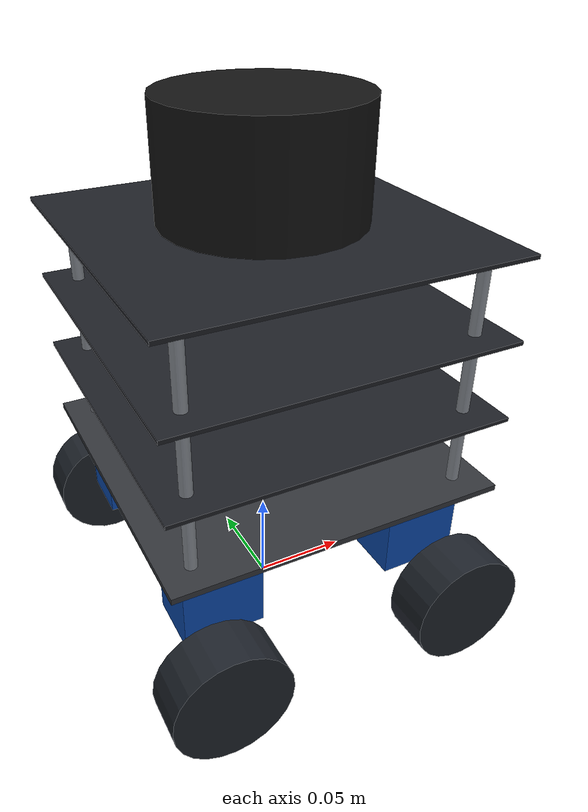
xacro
<?xml version="1.0"?>
<robot name="gatibot_v2"
       xmlns:xacro="http://www.ros.org/wiki/xacro">

  <!-- Dimensions in metres -->
  <xacro:property name="L" value="0.170"/>
  <xacro:property name="W" value="0.170"/>
  <xacro:property name="T0" value="0.003"/>
  <xacro:property name="T" value="0.002"/>
  <xacro:property name="GAP" value="0.040"/>

  <xacro:property name="R" value="0.030"/>
  <xacro:property name="WW" value="0.025"/>
  <xacro:property name="WX" value="0.065"/>
  <xacro:property name="WY" value="0.090"/>

  <!-- Plate centre heights above the ground -->
  <xacro:property name="Z0" value="0.090"/>
  <xacro:property name="Z1" value="${Z0 + GAP}"/>
  <xacro:property name="Z2" value="${Z1 + GAP}"/>
  <xacro:property name="Z3" value="${Z2 + GAP}"/>

  <!-- Main reference frame -->
  <link name="base_link">
    <visual>
      <origin xyz="0 0 ${Z0}"/>
      <geometry>
        <box size="${L} ${W} ${T0}"/>
      </geometry>
      <material name="bottom_plate">
        <color rgba="0.20 0.21 0.23 1"/>
      </material>
    </visual>
    <collision>
      <origin xyz="0 0 ${Z0}"/>
      <geometry>
        <box size="${L} ${W} ${T0}"/>
      </geometry>
    </collision>
    <inertial>
      <origin xyz="0 0 ${Z0}"/>
      <mass value="1.0"/>
      <inertia ixx="0.005" ixy="0" ixz="0"
               iyy="0.005" iyz="0" izz="0.005"/>
    </inertial>
  </link>

  <!-- Three additional chassis plates -->
  <xacro:macro name="plate" params="name z">
    <link name="${name}">
      <visual>
        <geometry>
          <box size="${L} ${W} ${T}"/>
        </geometry>
        <material name="plate_black">
          <color rgba="0.12 0.13 0.15 1"/>
        </material>
      </visual>
      <collision>
        <geometry>
          <box size="${L} ${W} ${T}"/>
        </geometry>
      </collision>
      <inertial>
        <mass value="0.15"/>
        <inertia ixx="0.0001" ixy="0" ixz="0"
                 iyy="0.0001" iyz="0" izz="0.0001"/>
      </inertial>
    </link>

    <joint name="${name}_joint" type="fixed">
      <parent link="base_link"/>
      <child link="${name}"/>
      <origin xyz="0 0 ${z}"/>
    </joint>
  </xacro:macro>

  <xacro:plate name="middle_plate_1" z="${Z1}"/>
  <xacro:plate name="middle_plate_2" z="${Z2}"/>
  <xacro:plate name="top_plate" z="${Z3}"/>

  <!-- Spacers for every gap between plates -->
  <xacro:macro name="spacer" params="name x y z">
    <link name="${name}">
      <visual>
        <geometry>
          <cylinder radius="0.003" length="${GAP}"/>
        </geometry>
        <material name="spacer_metal">
          <color rgba="0.55 0.57 0.60 1"/>
        </material>
      </visual>
      <collision>
        <geometry>
          <cylinder radius="0.003" length="${GAP}"/>
        </geometry>
      </collision>
      <inertial>
        <mass value="0.015"/>
        <inertia ixx="0.000003" ixy="0" ixz="0"
                 iyy="0.000003" iyz="0" izz="0.000001"/>
      </inertial>
    </link>

    <joint name="${name}_joint" type="fixed">
      <parent link="base_link"/>
      <child link="${name}"/>
      <origin xyz="${x} ${y} ${z}"/>
    </joint>
  </xacro:macro>

  <!-- First gap -->
  <xacro:spacer name="spacer_1_fl" x="0.070" y="0.070" z="${Z0 + GAP/2}"/>
  <xacro:spacer name="spacer_1_fr" x="0.070" y="-0.070" z="${Z0 + GAP/2}"/>
  <xacro:spacer name="spacer_1_rl" x="-0.070" y="0.070" z="${Z0 + GAP/2}"/>
  <xacro:spacer name="spacer_1_rr" x="-0.070" y="-0.070" z="${Z0 + GAP/2}"/>

  <!-- Second gap -->
  <xacro:spacer name="spacer_2_fl" x="0.070" y="0.070" z="${Z1 + GAP/2}"/>
  <xacro:spacer name="spacer_2_fr" x="0.070" y="-0.070" z="${Z1 + GAP/2}"/>
  <xacro:spacer name="spacer_2_rl" x="-0.070" y="0.070" z="${Z1 + GAP/2}"/>
  <xacro:spacer name="spacer_2_rr" x="-0.070" y="-0.070" z="${Z1 + GAP/2}"/>

  <!-- Third gap -->
  <xacro:spacer name="spacer_3_fl" x="0.070" y="0.070" z="${Z2 + GAP/2}"/>
  <xacro:spacer name="spacer_3_fr" x="0.070" y="-0.070" z="${Z2 + GAP/2}"/>
  <xacro:spacer name="spacer_3_rl" x="-0.070" y="0.070" z="${Z2 + GAP/2}"/>
  <xacro:spacer name="spacer_3_rr" x="-0.070" y="-0.070" z="${Z2 + GAP/2}"/>

  <!-- Four wheel assemblies -->
  <xacro:macro name="wheel" params="name x y">
    <link name="${name}">
      <visual>
        <origin rpy="1.5707963 0 0"/>
        <geometry>
          <cylinder radius="${R}" length="${WW}"/>
        </geometry>
        <material name="wheel_dark">
          <color rgba="0.12 0.14 0.17 1"/>
        </material>
      </visual>
      <collision>
        <origin rpy="1.5707963 0 0"/>
        <geometry>
          <cylinder radius="${R}" length="${WW}"/>
        </geometry>
      </collision>
      <inertial>
        <mass value="0.15"/>
        <inertia ixx="0.00008" ixy="0" ixz="0"
                 iyy="0.00008" iyz="0" izz="0.00008"/>
      </inertial>
    </link>

    <joint name="${name}_joint" type="continuous">
      <parent link="base_link"/>
      <child link="${name}"/>
      <origin xyz="${x} ${y} ${R}"/>
      <axis xyz="0 1 0"/>
    </joint>
  </xacro:macro>

  <xacro:wheel name="front_left_wheel" x="${WX}" y="${WY}"/>
  <xacro:wheel name="front_right_wheel" x="${WX}" y="${-WY}"/>
  <xacro:wheel name="rear_left_wheel" x="${-WX}" y="${WY}"/>
  <xacro:wheel name="rear_right_wheel" x="${-WX}" y="${-WY}"/>

  <!-- Motor housings moved inward to clear the wheels -->
  <xacro:macro name="motor" params="name x y">
    <link name="${name}">
      <visual>
        <geometry>
          <box size="0.040 0.030 0.035"/>
        </geometry>
        <material name="motor_blue">
          <color rgba="0.05 0.30 0.70 1"/>
        </material>
      </visual>
      <collision>
        <geometry>
          <box size="0.040 0.030 0.035"/>
        </geometry>
      </collision>
      <inertial>
        <mass value="0.10"/>
        <inertia ixx="0.00003" ixy="0" ixz="0"
                 iyy="0.00003" iyz="0" izz="0.00003"/>
      </inertial>
    </link>

    <joint name="${name}_joint" type="fixed">
      <parent link="base_link"/>
      <child link="${name}"/>
      <origin xyz="${x} ${y} 0.060"/>
    </joint>
  </xacro:macro>

  <!-- Motors sit inboard of the wheel centres -->
  <xacro:motor name="front_left_motor"  x="0.055"  y="0.055"/>
  <xacro:motor name="front_right_motor" x="0.055"  y="-0.055"/>
  <xacro:motor name="rear_left_motor"   x="-0.055" y="0.055"/>
  <xacro:motor name="rear_right_motor"  x="-0.055" y="-0.055"/>

  <!-- Battery mounted separately on the bottom chassis plate -->
  <link name="battery_link">
    <visual>
      <geometry>
        <box size="0.080 0.050 0.025"/>
      </geometry>
      <material name="battery_black">
        <color rgba="0.08 0.09 0.11 1"/>
      </material>
    </visual>
    <collision>
      <geometry>
        <box size="0.080 0.050 0.025"/>
      </geometry>
    </collision>
    <inertial>
      <mass value="0.30"/>
      <inertia ixx="0.0002" ixy="0" ixz="0"
               iyy="0.0002" iyz="0" izz="0.0002"/>
    </inertial>
  </link>

  <joint name="battery_joint" type="fixed">
    <parent link="base_link"/>
    <child link="battery_link"/>
    <origin xyz="0 0 0.108"/>
  </joint>

  <!-- RPLIDAR A1: approximate visual envelope -->
  <link name="rplidar_link">
    <visual>
      <geometry>
        <cylinder radius="0.0485" length="0.055"/>
      </geometry>
      <material name="lidar_black">
        <color rgba="0.08 0.08 0.08 1"/>
      </material>
    </visual>
    <collision>
      <geometry>
        <cylinder radius="0.0485" length="0.055"/>
      </geometry>
    </collision>
    <inertial>
      <mass value="0.17"/>
      <inertia ixx="0.0001" ixy="0" ixz="0"
               iyy="0.0001" iyz="0" izz="0.0001"/>
    </inertial>
  </link>

  <joint name="rplidar_joint" type="fixed">
    <parent link="top_plate"/>
    <child link="rplidar_link"/>
    <origin xyz="0 0 0.0305"/>
  </joint>

  <!-- Gazebo Classic simulated 2D lidar -->
  <gazebo reference="rplidar_link">
    <sensor name="rplidar_scan" type="ray">
      <pose>0 0 0 0 0 0</pose>
      <always_on>true</always_on>
      <visualize>true</visualize>
      <update_rate>10</update_rate>
      <ray>
        <scan>
          <horizontal>
            <samples>360</samples>
            <resolution>1</resolution>
            <min_angle>-3.14159265</min_angle>
            <max_angle>3.14159265</max_angle>
          </horizontal>
        </scan>
        <range>
          <min>0.15</min>
          <max>12.0</max>
          <resolution>0.01</resolution>
        </range>
      </ray>
      <plugin name="gazebo_ros_ray_sensor"
              filename="libgazebo_ros_ray_sensor.so">
        <ros>
          <remapping>~/out:=/scan</remapping>
        </ros>
        <output_type>sensor_msgs/LaserScan</output_type>
        <frame_name>rplidar_link</frame_name>
      </plugin>
    </sensor>
  </gazebo>

  <!-- Temporary planar motion controller for testing -->
  <gazebo>
    <plugin name="gazebo_ros_planar_move"
            filename="libgazebo_ros_planar_move.so">
      <ros>
        <remapping>cmd_vel:=/cmd_vel</remapping>
      </ros>
      <update_rate>50.0</update_rate>
      <command_topic>cmd_vel</command_topic>
      <odometry_topic>odom</odometry_topic>
      <odometry_frame>odom</odometry_frame>
      <robot_base_frame>base_link</robot_base_frame>
      <publish_odom>true</publish_odom>
      <publish_odom_tf>true</publish_odom_tf>
    </plugin>
  </gazebo>

</robot>
